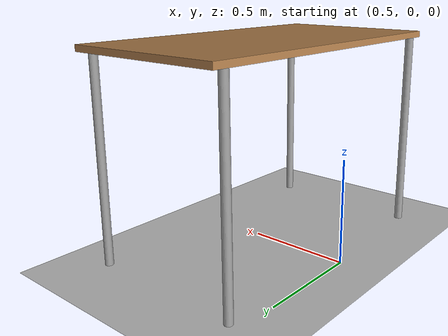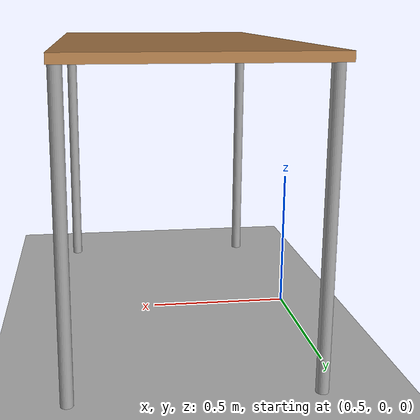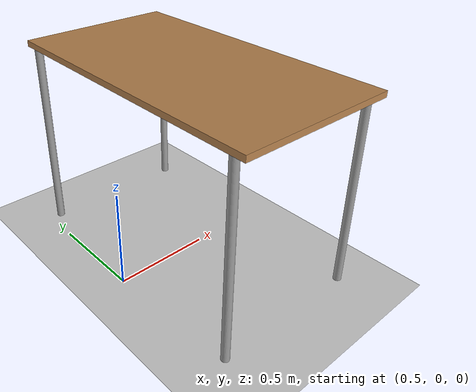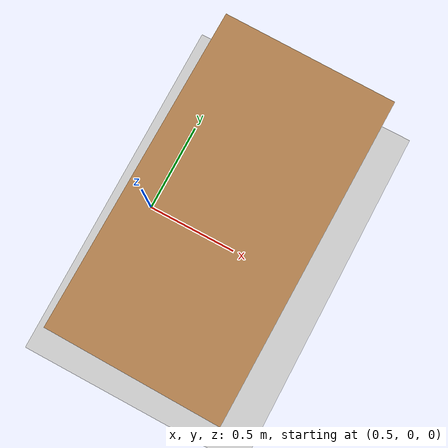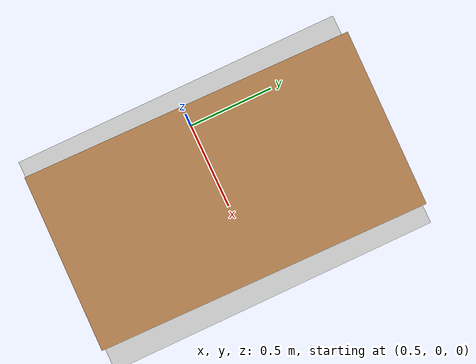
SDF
<sdf version="1.6">
 <world name="SRC_finals">
  <physics name="default_physics" default="0" type="ode">
   <real_time_update_rate>1000</real_time_update_rate>
   <max_step_size>0.001</max_step_size>
   <real_time_factor>1</real_time_factor>
   <ode>
    <solver>
     <type>quick</type>
     <iters>150</iters>
     <precon_iters>0</precon_iters>
     <sor>1.4</sor>
     <use_dynamic_moi_rescaling>1</use_dynamic_moi_rescaling>
    </solver>
    <constraints>
     <cfm>0</cfm>
     <erp>0.8</erp>
     <contact_max_correcting_vel>2000</contact_max_correcting_vel>
     <contact_surface_layer>0.01</contact_surface_layer>
    </constraints>
   </ode>
  </physics>
  <scene>
   <background>0.968627 0.690196 0.384314 1</background>
   <grid>0</grid>
   <origin_visual>0</origin_visual>
   <ambient>0.4 0.4 0.4 1</ambient>
   <shadows>1</shadows>
  </scene>
  <light name="sun" type="directional">
   <pose>0 0 1000 0.781734 -1.0831 -0</pose>
   <diffuse>0.8 0.8 0.8 1</diffuse>
   <specular>0.2 0.2 0.2 1</specular>
   <attenuation>
    <range>1000</range>
    <constant>0.9</constant>
    <linear>0.01</linear>
    <quadratic>0.001</quadratic>
   </attenuation>
   <direction>-0.5 0.1 -0.9</direction>
  </light>
  <model name="ground_plane">
   <static>1</static>
   <link name="link">
    <collision name="collision">
     <geometry><plane><normal>0 0 1</normal><size>100 100</size></plane></geometry>
     <surface><friction><ode><mu>100</mu><mu2>50</mu2></ode></friction></surface>
    </collision>
    <visual name="visual">
     <cast_shadows>0</cast_shadows>
     <geometry><plane><normal>0 0 1</normal><size>100 100</size></plane></geometry>
     <material>
      <script><uri>file://media/materials/scripts/gazebo.material</uri><name>Gazebo/Grey</name></script>
     </material>
    </visual>
    <velocity_decay><linear>0</linear><angular>0</angular></velocity_decay>
   </link>
  </model>
  <model name="table">
   <static>1</static>
   <link name="link">
    <collision name="surface">
     <pose>0 0 1 0 -0 0</pose>
     <geometry><box><size>1.5 0.8 0.03</size></box></geometry>
     <surface><friction><ode><mu>0.6</mu><mu2>0.6</mu2></ode></friction></surface>
    </collision>
    <visual name="visual1">
     <pose>0 0 1 0 -0 0</pose>
     <geometry><box><size>1.5 0.8 0.03</size></box></geometry>
     <material>
      <script><uri>file://media/materials/scripts/gazebo.material</uri><name>Gazebo/Wood</name></script>
     </material>
    </visual>
    <collision name="front_left_leg">
     <pose>0.68 0.38 0.5 0 -0 0</pose>
     <geometry><cylinder><radius>0.02</radius><length>1</length></cylinder></geometry>
    </collision>
    <visual name="front_left_leg">
     <pose>0.68 0.38 0.5 0 -0 0</pose>
     <geometry><cylinder><radius>0.02</radius><length>1</length></cylinder></geometry>
     <material>
      <script><uri>file://media/materials/scripts/gazebo.material</uri><name>Gazebo/Grey</name></script>
     </material>
    </visual>
    <collision name="front_right_leg">
     <pose>0.68 -0.38 0.5 0 -0 0</pose>
     <geometry><cylinder><radius>0.02</radius><length>1</length></cylinder></geometry>
    </collision>
    <visual name="front_right_leg">
     <pose>0.68 -0.38 0.5 0 -0 0</pose>
     <geometry><cylinder><radius>0.02</radius><length>1</length></cylinder></geometry>
     <material>
      <script><uri>file://media/materials/scripts/gazebo.material</uri><name>Gazebo/Grey</name></script>
     </material>
    </visual>
    <collision name="back_right_leg">
     <pose>-0.68 -0.38 0.5 0 -0 0</pose>
     <geometry><cylinder><radius>0.02</radius><length>1</length></cylinder></geometry>
    </collision>
    <visual name="back_right_leg">
     <pose>-0.68 -0.38 0.5 0 -0 0</pose>
     <geometry><cylinder><radius>0.02</radius><length>1</length></cylinder></geometry>
     <material>
      <script><uri>file://media/materials/scripts/gazebo.material</uri><name>Gazebo/Grey</name></script>
     </material>
    </visual>
    <collision name="back_left_leg">
     <pose>-0.68 0.38 0.5 0 -0 0</pose>
     <geometry><cylinder><radius>0.02</radius><length>1</length></cylinder></geometry>
    </collision>
    <visual name="back_left_leg">
     <pose>-0.68 0.38 0.5 0 -0 0</pose>
     <geometry><cylinder><radius>0.02</radius><length>1</length></cylinder></geometry>
     <material>
      <script><uri>file://media/materials/scripts/gazebo.material</uri><name>Gazebo/Grey</name></script>
     </material>
    </visual>
   </link>
   <pose>0.93313 0.012604 0 0 -0 1.55759</pose>
  </model>
  <gravity>0 0 -9.8</gravity>
  <magnetic_field>6e-06 2.3e-05 -4.2e-05</magnetic_field>
  <atmosphere type="adiabatic"/>
  <spherical_coordinates>
   <surface_model>EARTH_WGS84</surface_model>
   <latitude_deg>0</latitude_deg>
   <longitude_deg>0</longitude_deg>
   <elevation>0</elevation>
   <heading_deg>0</heading_deg>
  </spherical_coordinates>
 </world>
</sdf>
